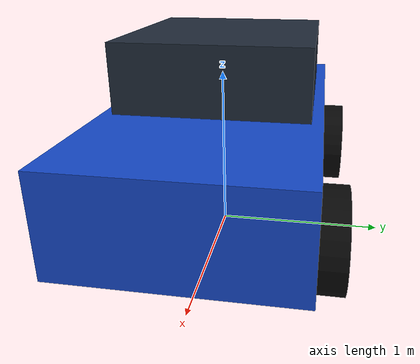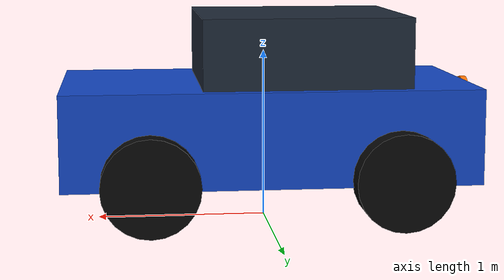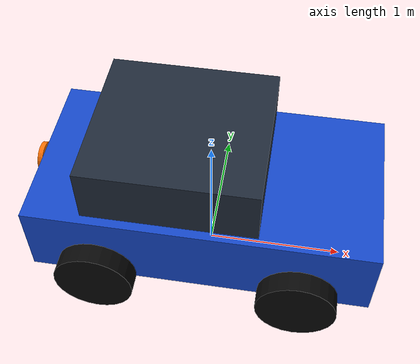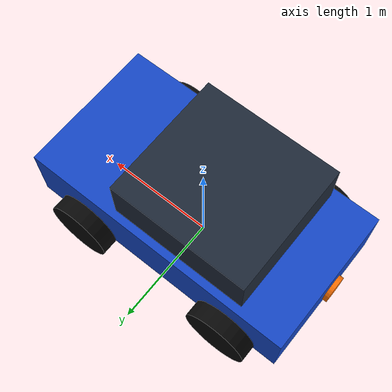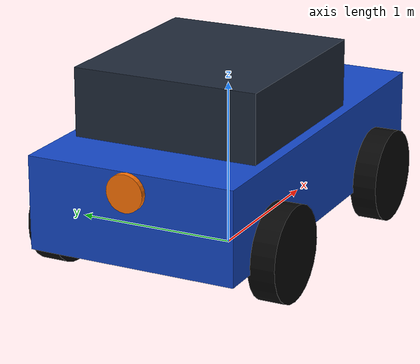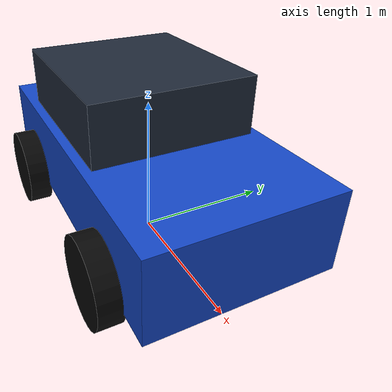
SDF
<?xml version="1.0"?>
<sdf version="1.9">
  <model name="ev_vehicle">
    <static>true</static>
    <link name="chassis">
      <visual name="body"><pose>0 0 0.55 0 0 0</pose><geometry><box><size>2.4 1.25 0.55</size></box></geometry><material><diffuse>0.08 0.28 0.78 1</diffuse></material></visual>
      <visual name="cabin"><pose>-0.20 0 1.02 0 0 0</pose><geometry><box><size>1.20 1.12 0.42</size></box></geometry><material><diffuse>0.12 0.16 0.22 1</diffuse></material></visual>
      <visual name="charge_port"><pose>-1.23 0 0.72 0 1.5708 0</pose><geometry><cylinder><radius>0.11</radius><length>0.035</length></cylinder></geometry><material><diffuse>1 0.45 0.02 1</diffuse></material></visual>
      <visual name="wheel_fl"><pose>0.70 0.69 0.32 1.5708 0 0</pose><geometry><cylinder><radius>0.28</radius><length>0.16</length></cylinder></geometry><material><diffuse>0.03 0.03 0.03 1</diffuse></material></visual>
      <visual name="wheel_fr"><pose>0.70 -0.69 0.32 1.5708 0 0</pose><geometry><cylinder><radius>0.28</radius><length>0.16</length></cylinder></geometry><material><diffuse>0.03 0.03 0.03 1</diffuse></material></visual>
      <visual name="wheel_rl"><pose>-0.72 0.69 0.32 1.5708 0 0</pose><geometry><cylinder><radius>0.28</radius><length>0.16</length></cylinder></geometry><material><diffuse>0.03 0.03 0.03 1</diffuse></material></visual>
      <visual name="wheel_rr"><pose>-0.72 -0.69 0.32 1.5708 0 0</pose><geometry><cylinder><radius>0.28</radius><length>0.16</length></cylinder></geometry><material><diffuse>0.03 0.03 0.03 1</diffuse></material></visual>
    </link>
  </model>
</sdf>
